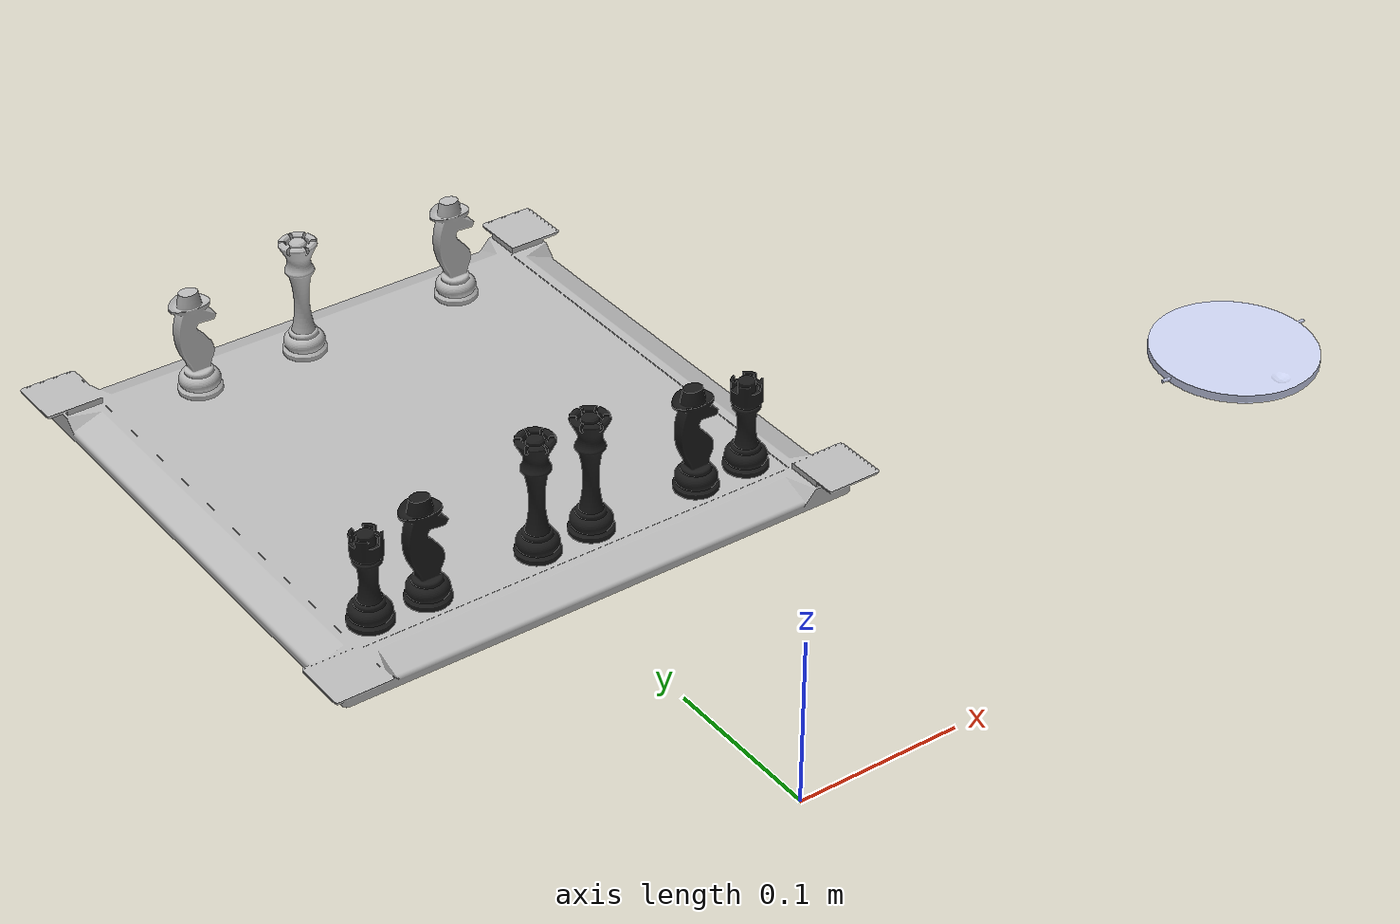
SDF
<sdf version="1.7">
 <world name="default">
  <gravity>0 0 -9.8</gravity>
  <magnetic_field>6e-06 2.3e-05 -4.2e-05</magnetic_field>
  <atmosphere type="adiabatic"/>
  <physics type="ode">
   <max_step_size>0.001</max_step_size>
   <real_time_factor>1</real_time_factor>
   <real_time_update_rate>1000</real_time_update_rate>
  </physics>
  <scene><ambient>0.4 0.4 0.4 1</ambient><background>0.7 0.7 0.7 1</background><shadows>1</shadows></scene>
  <audio><device>default</device></audio>
  <spherical_coordinates>
   <surface_model>EARTH_WGS84</surface_model>
   <latitude_deg>0</latitude_deg>
   <longitude_deg>0</longitude_deg>
   <elevation>0</elevation>
   <heading_deg>0</heading_deg>
  </spherical_coordinates>
  <model name="board">
   <static>1</static>
   <link name="link">
    <visual name="visual"><geometry><mesh><uri>model://board/meshes/board.dae</uri></mesh></geometry></visual>
    <collision name="collision">
     <geometry><mesh><uri>model://board/meshes/board.dae</uri></mesh></geometry>
    </collision>
   </link>
   <pose>-0.011355 0.342107 0.010873 0 -0 0</pose>
  </model>
  <light name="user_point_light_0" type="point">
   <pose>-0.050834 1.0999 1 0 -0 0</pose>
   <diffuse>0.5 0.5 0.5 1</diffuse>
   <specular>0.1 0.1 0.1 1</specular>
   <attenuation>
    <range>20</range>
    <constant>0.5</constant>
    <linear>0.01</linear>
    <quadratic>0.001</quadratic>
   </attenuation>
   <cast_shadows>0</cast_shadows>
   <direction>0 0 -1</direction>
   <spot><inner_angle>0</inner_angle><outer_angle>0</outer_angle><falloff>0</falloff></spot>
  </light>
  <model name="black_rook_a8">
   <static>0</static>
   <link name="link">
    <inertial>
     <mass>0.05</mass>
     <inertia><ixx>1e-05</ixx><iyy>1e-05</iyy><izz>1e-05</izz><ixy>0</ixy><ixz>0</ixz><iyz>0</iyz></inertia>
    </inertial>
    <collision name="collision">
     <geometry><mesh><uri>model://black_rook/meshes/black_rook.dae</uri></mesh></geometry>
     <surface><friction><ode><mu>1</mu><mu2>1</mu2></ode></friction></surface>
    </collision>
    <visual name="visual">
     <geometry><mesh><uri>model://black_rook/meshes/black_rook.dae</uri></mesh></geometry>
    </visual>
   </link>
   <plugin name="ros2_objectpose_plugin" filename="libros2_objectpose_plugin.so">
    <ros><namespace>black_rook_a8</namespace></ros>
   </plugin>
   <pose>0.131841 0.22245 0.024973 2e-06 -0.000103 -0.000886</pose>
  </model>
  <model name="black_rook_h8">
   <static>0</static>
   <link name="link">
    <inertial>
     <mass>0.05</mass>
     <inertia><ixx>1e-05</ixx><iyy>1e-05</iyy><izz>1e-05</izz><ixy>0</ixy><ixz>0</ixz><iyz>0</iyz></inertia>
    </inertial>
    <collision name="collision">
     <geometry><mesh><uri>model://black_rook/meshes/black_rook.dae</uri></mesh></geometry>
     <surface><friction><ode><mu>1</mu><mu2>1</mu2></ode></friction></surface>
    </collision>
    <visual name="visual">
     <geometry><mesh><uri>model://black_rook/meshes/black_rook.dae</uri></mesh></geometry>
    </visual>
   </link>
   <plugin name="ros2_objectpose_plugin" filename="libros2_objectpose_plugin.so">
    <ros><namespace>black_rook_h8</namespace></ros>
   </plugin>
   <pose>-0.113202 0.222522 0.024978 0.000249 -0.000229 -0.001873</pose>
  </model>
  <model name="black_knight_b8">
   <static>0</static>
   <link name="link">
    <inertial>
     <mass>0.05</mass>
     <inertia><ixx>1e-05</ixx><iyy>1e-05</iyy><izz>1e-05</izz><ixy>0</ixy><ixz>0</ixz><iyz>0</iyz></inertia>
    </inertial>
    <collision name="collision">
     <geometry><mesh><uri>model://black_knight/meshes/black_knight.dae</uri></mesh></geometry>
     <surface><friction><ode><mu>1</mu><mu2>1</mu2></ode></friction></surface>
    </collision>
    <visual name="visual">
     <geometry><mesh><uri>model://black_knight/meshes/black_knight.dae</uri></mesh></geometry>
    </visual>
   </link>
   <plugin name="ros2_objectpose_plugin" filename="libros2_objectpose_plugin.so">
    <ros><namespace>black_knight_b8</namespace></ros>
   </plugin>
   <pose>0.096603 0.222405 0.024973 -3.2e-05 -6.1e-05 -0.000112</pose>
  </model>
  <model name="black_knight_g8">
   <static>0</static>
   <link name="link">
    <inertial>
     <mass>0.05</mass>
     <inertia><ixx>1e-05</ixx><iyy>1e-05</iyy><izz>1e-05</izz><ixy>0</ixy><ixz>0</ixz><iyz>0</iyz></inertia>
    </inertial>
    <collision name="collision">
     <geometry><mesh><uri>model://black_knight/meshes/black_knight.dae</uri></mesh></geometry>
     <surface><friction><ode><mu>1</mu><mu2>1</mu2></ode></friction></surface>
    </collision>
    <visual name="visual">
     <geometry><mesh><uri>model://black_knight/meshes/black_knight.dae</uri></mesh></geometry>
    </visual>
   </link>
   <plugin name="ros2_objectpose_plugin" filename="libros2_objectpose_plugin.so">
    <ros><namespace>black_knight_g8</namespace></ros>
   </plugin>
   <pose>-0.078397 0.222405 0.024973 5.6e-05 -2e-05 -0.000107</pose>
  </model>
  <model name="white_knight_b1">
   <static>0</static>
   <link name="link">
    <inertial>
     <mass>0.05</mass>
     <inertia><ixx>1e-05</ixx><iyy>1e-05</iyy><izz>1e-05</izz><ixy>0</ixy><ixz>0</ixz><iyz>0</iyz></inertia>
    </inertial>
    <collision name="collision">
     <geometry><mesh><uri>model://white_knight/meshes/white_knight.dae</uri></mesh></geometry>
     <surface><friction><ode><mu>1</mu><mu2>1</mu2></ode></friction></surface>
    </collision>
    <visual name="visual">
     <geometry><mesh><uri>model://white_knight/meshes/white_knight.dae</uri></mesh></geometry>
    </visual>
   </link>
   <plugin name="ros2_objectpose_plugin" filename="libros2_objectpose_plugin.so">
    <ros><namespace>white_knight_b1</namespace></ros>
   </plugin>
   <pose>0.096604 0.467405 0.024973 7.3e-05 -2.7e-05 -0.000109</pose>
  </model>
  <model name="white_knight_g1">
   <static>0</static>
   <link name="link">
    <inertial>
     <mass>0.05</mass>
     <inertia><ixx>1e-05</ixx><iyy>1e-05</iyy><izz>1e-05</izz><ixy>0</ixy><ixz>0</ixz><iyz>0</iyz></inertia>
    </inertial>
    <collision name="collision">
     <geometry><mesh><uri>model://white_knight/meshes/white_knight.dae</uri></mesh></geometry>
     <surface><friction><ode><mu>1</mu><mu2>1</mu2></ode></friction></surface>
    </collision>
    <visual name="visual">
     <geometry><mesh><uri>model://white_knight/meshes/white_knight.dae</uri></mesh></geometry>
    </visual>
   </link>
   <plugin name="ros2_objectpose_plugin" filename="libros2_objectpose_plugin.so">
    <ros><namespace>white_knight_g1</namespace></ros>
   </plugin>
   <pose>-0.078398 0.467405 0.024973 -3.5e-05 -6.6e-05 -0.000114</pose>
  </model>
  <model name="black_queen_d8">
   <static>0</static>
   <link name="link">
    <inertial>
     <mass>0.05</mass>
     <inertia><ixx>1e-05</ixx><iyy>1e-05</iyy><izz>1e-05</izz><ixy>0</ixy><ixz>0</ixz><iyz>0</iyz></inertia>
    </inertial>
    <collision name="collision">
     <geometry><mesh><uri>model://black_queen/meshes/black_queen.dae</uri></mesh></geometry>
     <surface><friction><ode><mu>1</mu><mu2>1</mu2></ode></friction></surface>
    </collision>
    <visual name="visual">
     <geometry><mesh><uri>model://black_queen/meshes/black_queen.dae</uri></mesh></geometry>
    </visual>
   </link>
   <plugin name="ros2_objectpose_plugin" filename="libros2_objectpose_plugin.so">
    <ros><namespace>black_queen_d8</namespace></ros>
   </plugin>
   <pose>0.026724 0.22254 0.024972 0.000277 -2.1e-05 0.001641</pose>
  </model>
  <model name="black_king_e8">
   <static>0</static>
   <link name="link">
    <inertial>
     <mass>0.05</mass>
     <inertia><ixx>1e-05</ixx><iyy>1e-05</iyy><izz>1e-05</izz><ixy>0</ixy><ixz>0</ixz><iyz>0</iyz></inertia>
    </inertial>
    <collision name="collision">
     <geometry><mesh><uri>model://black_king/meshes/black_king.dae</uri></mesh></geometry>
     <surface><friction><ode><mu>1</mu><mu2>1</mu2></ode></friction></surface>
    </collision>
    <visual name="visual">
     <geometry><mesh><uri>model://black_king/meshes/black_king.dae</uri></mesh></geometry>
    </visual>
   </link>
   <plugin name="ros2_objectpose_plugin" filename="libros2_objectpose_plugin.so">
    <ros><namespace>black_king_e8</namespace></ros>
   </plugin>
   <pose>-0.008361 0.222435 0.024973 -4.6e-05 -5.3e-05 0.00119</pose>
  </model>
  <model name="white_king_e1">
   <static>0</static>
   <link name="link">
    <inertial>
     <mass>0.05</mass>
     <inertia><ixx>1e-05</ixx><iyy>1e-05</iyy><izz>1e-05</izz><ixy>0</ixy><ixz>0</ixz><iyz>0</iyz></inertia>
    </inertial>
    <collision name="collision">
     <geometry><mesh><uri>model://white_king/meshes/white_king.dae</uri></mesh></geometry>
     <surface><friction><ode><mu>1</mu><mu2>1</mu2></ode></friction></surface>
    </collision>
    <visual name="visual">
     <geometry><mesh><uri>model://white_king/meshes/white_king.dae</uri></mesh></geometry>
    </visual>
   </link>
   <plugin name="ros2_objectpose_plugin" filename="libros2_objectpose_plugin.so">
    <ros><namespace>white_king_e1</namespace></ros>
   </plugin>
   <pose>-0.0084 0.4674 0.024973 -4.6e-05 -5.3e-05 -8e-06</pose>
  </model>
  <plugin name="gazebo_link_attacher" filename="libgazebo_link_attacher.so"/>
  <model name="chess_bin_lid">
   <static>0</static>
   <link name="link">
    <inertial>
     <mass>0.2</mass>
     <inertia><ixx>1e-05</ixx><iyy>1e-05</iyy><izz>1e-05</izz><ixy>0</ixy><ixz>0</ixz><iyz>0</iyz></inertia>
    </inertial>
    <collision name="collision">
     <geometry><mesh><uri>model://chess_bin_lid/meshes/chess_bin_lid.dae</uri></mesh></geometry>
     <surface><friction><ode><mu>1</mu><mu2>1</mu2></ode></friction></surface>
    </collision>
    <visual name="visual">
     <geometry><mesh><uri>model://chess_bin_lid/meshes/chess_bin_lid.dae</uri></mesh></geometry>
    </visual>
   </link>
   <pose>0.294996 0.020686 -0.001681 0.004667 -0.000161 -8.4e-05</pose>
  </model>
 </world>
</sdf>
